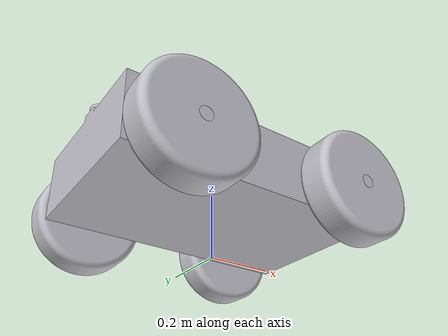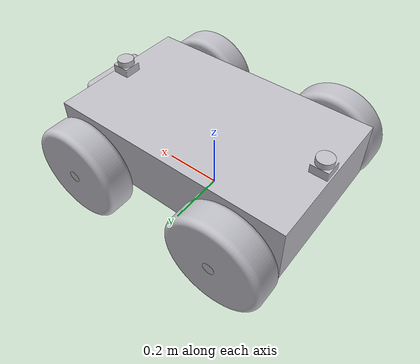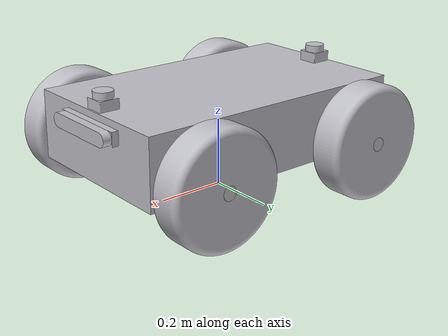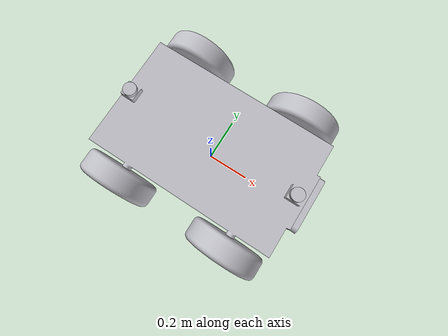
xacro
<?xml version="1.0"?>
<robot xmlns:xacro="http://www.ros.org/wiki/xacro" name="diffdrive_robot">
  <xacro:arg name="prefix" default=""/>
  <xacro:arg name="use_mock_hardware" default="false"/>

  <!-- Include the macro file ONCE -->
  <xacro:include filename="$(find susag_bringup)/urdf/susag_updated_model.xacro"/>
  <!-- Include ros2_control xacro ONCE -->
  <xacro:include filename="$(find susag_bringup)/urdf/susag_diffbot.ros2_control.xacro"/>

  <!-- Instantiate your robot -->
  <xacro:diffbot prefix="$(arg prefix)"/>

  <!-- Attach ros2_control hardware/controller -->
  <xacro:diffbot_ros2_control
    name="DiffBot" prefix="$(arg prefix)" use_mock_hardware="$(arg use_mock_hardware)"/>

</robot>

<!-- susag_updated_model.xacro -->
<robot xmlns:xacro="http://www.ros.org/wiki/xacro">

  <xacro:macro name="diffbot" params="prefix">

    <xacro:include filename="$(find susag_updated_model_description)/urdf/materials.xacro" />
    <xacro:include filename="$(find susag_updated_model_description)/urdf/susag_updated_model.trans" />
    <xacro:include filename="$(find susag_updated_model_description)/urdf/susag_updated_model.gazebo" />
    <link name="base_link">
      <inertial>
        <origin xyz="0.0009712747698901402 0.0 0.21010916566289983" rpy="0 0 0"/>
        <mass value="2.0"/>
        <inertia ixx="16.290402" iyy="40.746842" izz="52.606689" ixy="0.0" iyz="0.0" ixz="-0.038454"/>
      </inertial>
      <visual>
        <origin xyz="0 0 0" rpy="0 0 0"/>
        <geometry>
          <mesh filename="file://$(find susag_updated_model_description)/meshes/base_link.stl" scale="0.001 0.001 0.001"/>
        </geometry>
        <material name="silver"/>
      </visual>
      <collision>
        <origin xyz="0 0 0" rpy="0 0 0"/>
        <geometry>
          <mesh filename="file://$(find susag_updated_model_description)/meshes/base_link.stl" scale="0.001 0.001 0.001"/>
        </geometry>
      </collision>
    </link>

    <link name="rear_right_wheel_1">
      <inertial>
        <origin xyz="-3.1807889655510735e-14 0.04999999999999999 -5.551115123125783e-17" rpy="0 0 0"/>
        <mass value="4.0"/>
        <inertia ixx="0.491633" iyy="0.87867" izz="0.491633" ixy="-0.0" iyz="0.0" ixz="-0.0"/>
      </inertial>
      <visual>
        <origin xyz="0.2665 0.37 -0.165" rpy="0 0 0"/>
        <geometry>
          <mesh filename="file://$(find susag_updated_model_description)/meshes/rear_right_wheel_1.stl" scale="0.001 0.001 0.001"/>
        </geometry>
        <material name="silver"/>
      </visual>
      <collision>
        <origin xyz="0.2665 0.37 -0.165" rpy="0 0 0"/>
        <geometry>
          <mesh filename="file://$(find susag_updated_model_description)/meshes/rear_right_wheel_1.stl" scale="0.001 0.001 0.001"/>
        </geometry>
      </collision>
    </link>

    <link name="front_right_wheel_1">
      <inertial>
        <origin xyz="-3.191891195797325e-14 0.04999999999999999 -5.551115123125783e-17" rpy="0 0 0"/>
        <mass value="4.0"/>
        <inertia ixx="0.491633" iyy="0.87867" izz="0.491633" ixy="0.0" iyz="0.0" ixz="-0.0"/>
      </inertial>
      <visual>
        <origin xyz="-0.2665 0.37 -0.165" rpy="0 0 0"/>
        <geometry>
          <mesh filename="file://$(find susag_updated_model_description)/meshes/front_right_wheel_1.stl" scale="0.001 0.001 0.001"/>
        </geometry>
        <material name="silver"/>
      </visual>
      <collision>
        <origin xyz="-0.2665 0.37 -0.165" rpy="0 0 0"/>
        <geometry>
          <mesh filename="file://$(find susag_updated_model_description)/meshes/front_right_wheel_1.stl" scale="0.001 0.001 0.001"/>
        </geometry>
      </collision>
    </link>

    <link name="front_left_wheel_1">
      <inertial>
        <origin xyz="-3.191891195797325e-14 -0.04999999999999999 -5.551115123125783e-17" rpy="0 0 0"/>
        <mass value="4.0"/>
        <inertia ixx="0.491633" iyy="0.87867" izz="0.491633" ixy="-0.0" iyz="-0.0" ixz="-0.0"/>
      </inertial>
      <visual>
        <origin xyz="-0.2665 -0.37 -0.165" rpy="0 0 0"/>
        <geometry>
          <mesh filename="file://$(find susag_updated_model_description)/meshes/front_left_wheel_1.stl" scale="0.001 0.001 0.001"/>
        </geometry>
        <material name="silver"/>
      </visual>
      <collision>
        <origin xyz="-0.2665 -0.37 -0.165" rpy="0 0 0"/>
        <geometry>
          <mesh filename="file://$(find susag_updated_model_description)/meshes/front_left_wheel_1.stl" scale="0.001 0.001 0.001"/>
        </geometry>
      </collision>
    </link>

    <link name="rear_left_wheel_1">
      <inertial>
        <origin xyz="-3.186340080674199e-14 -0.04999999999999999 -5.551115123125783e-17" rpy="0 0 0"/>
        <mass value="4.0"/>
        <inertia ixx="0.491633" iyy="0.87867" izz="0.491633" ixy="0.0" iyz="-0.0" ixz="-0.0"/>
      </inertial>
      <visual>
        <origin xyz="0.2665 -0.37 -0.165" rpy="0 0 0"/>
        <geometry>
          <mesh filename="file://$(find susag_updated_model_description)/meshes/rear_left_wheel_1.stl" scale="0.001 0.001 0.001"/>
        </geometry>
        <material name="silver"/>
      </visual>
      <collision>
        <origin xyz="0.2665 -0.37 -0.165" rpy="0 0 0"/>
        <geometry>
          <mesh filename="file://$(find susag_updated_model_description)/meshes/rear_left_wheel_1.stl" scale="0.001 0.001 0.001"/>
        </geometry>
      </collision>
    </link>

    <link name="real_sense_1">
      <inertial>
        <origin xyz="0.012500000000000011 0.0 0.0" rpy="0 0 0"/>
        <mass value="0.1"/>
        <inertia ixx="0.008377" iyy="0.000329" izz="0.008237" ixy="0.0" iyz="0.0" ixz="-0.0"/>
      </inertial>
      <visual>
        <origin xyz="-0.436 -0.0 -0.27" rpy="0 0 0"/>
        <geometry>
          <mesh filename="file://$(find susag_updated_model_description)/meshes/real_sense_1.stl" scale="0.001 0.001 0.001"/>
        </geometry>
        <material name="silver"/>
      </visual>
      <collision>
        <origin xyz="-0.436 -0.0 -0.27" rpy="0 0 0"/>
        <geometry>
          <mesh filename="file://$(find susag_updated_model_description)/meshes/real_sense_1.stl" scale="0.001 0.001 0.001"/>
        </geometry>
      </collision>
    </link>

    <link name="rear_lidar_1">
      <inertial>
        <origin xyz="0.0 0.0 0.009999999999999898" rpy="0 0 0"/>
        <mass value="0.1"/>
        <inertia ixx="8.9e-05" iyy="8.9e-05" izz="0.000152" ixy="-0.0" iyz="0.0" ixz="0.0"/>
      </inertial>
      <visual>
        <origin xyz="0.381 -0.0 -0.34" rpy="0 0 0"/>
        <geometry>
          <mesh filename="file://$(find susag_updated_model_description)/meshes/rear_lidar_1.stl" scale="0.001 0.001 0.001"/>
        </geometry>
        <material name="silver"/>
      </visual>
      <collision>
        <origin xyz="0.381 -0.0 -0.34" rpy="0 0 0"/>
        <geometry>
          <mesh filename="file://$(find susag_updated_model_description)/meshes/rear_lidar_1.stl" scale="0.001 0.001 0.001"/>
        </geometry>
      </collision>
    </link>

    <link name="front_lidar_1">
      <inertial>
        <origin xyz="5.6773423184885985e-09 -5.7697137078703364e-18 0.009999999999999953" rpy="0 0 0"/>
        <mass value="0.1"/>
        <inertia ixx="8.9e-05" iyy="8.9e-05" izz="0.000152" ixy="-0.0" iyz="0.0" ixz="-0.0"/>
      </inertial>
      <visual>
        <origin xyz="-0.381 -0.0 -0.34" rpy="0 0 0"/>
        <geometry>
          <mesh filename="file://$(find susag_updated_model_description)/meshes/front_lidar_1.stl" scale="0.001 0.001 0.001"/>
        </geometry>
        <material name="silver"/>
      </visual>
      <collision>
        <origin xyz="-0.381 -0.0 -0.34" rpy="0 0 0"/>
        <geometry>
          <mesh filename="file://$(find susag_updated_model_description)/meshes/front_lidar_1.stl" scale="0.001 0.001 0.001"/>
        </geometry>
      </collision>
    </link>

    <link name="imu_link">
      <inertial>
        <origin xyz="0 0 0" rpy="0 0 0"/>
        <!-- tiny mass/inertia just to be valid -->
        <mass value="0.05"/>
        <inertia ixx="1e-5" iyy="1e-5" izz="1e-5" ixy="0" ixz="0" iyz="0"/>
      </inertial>
      <visual>
        <origin xyz="0 0 0" rpy="0 0 0"/>
        <geometry>
          <!-- small box to visualize; optional -->
          <box size="0.02 0.02 0.01"/>
        </geometry>
        <material name="silver"/>
      </visual>
      <collision>
        <origin xyz="0 0 0" rpy="0 0 0"/>
        <geometry>
          <box size="0.02 0.02 0.01"/>
        </geometry>
      </collision>
    </link>

    <joint name="rear_wheel_right_joint" type="continuous">
      <origin xyz="-0.2665 -0.37 0.165" rpy="0 0 0"/>
      <parent link="base_link"/>
      <child link="rear_right_wheel_1"/>
      <axis xyz="0.0 1.0 0.0"/>
    </joint>

    <joint name="front_wheel_right_joint" type="continuous">
      <origin xyz="0.2665 -0.37 0.165" rpy="0 0 0"/>
      <parent link="base_link"/>
      <child link="front_right_wheel_1"/>
      <axis xyz="0.0 1.0 0.0"/>
    </joint>

    <joint name="front_wheel_left_joint" type="continuous">
      <origin xyz="0.2665 0.37 0.165" rpy="0 0 0"/>
      <parent link="base_link"/>
      <child link="front_left_wheel_1"/>
      <axis xyz="0.0 1.0 0.0"/>
    </joint>

    <joint name="rear_wheel_left_joint" type="continuous">
      <origin xyz="-0.2665 0.37 0.165" rpy="0 0 0"/>
      <parent link="base_link"/>
      <child link="rear_left_wheel_1"/>
      <axis xyz="0.0 1.0 0.0"/>
    </joint>

    <joint name="real_sense_joint" type="fixed">
      <origin xyz="0.436 0.0 0.27" rpy="0 0 0"/>
      <parent link="base_link"/>
      <child link="real_sense_1"/>
    </joint>

    <joint name="lidar_rear_joint" type="fixed">
      <origin xyz="-0.381 0.0 0.34" rpy="0 0 ${pi}"/>
      <parent link="base_link"/>
      <child link="rear_lidar_1"/>
    </joint>

    <joint name="lidar_front_joint" type="fixed">
      <origin xyz="0.381 0.0 0.34" rpy="0 0 0"/>
      <parent link="base_link"/>
      <child link="front_lidar_1"/>
    </joint>

    <joint name="imu_joint" type="fixed">
      <origin xyz="-0.381 0.02 0.24" rpy="${-pi/2} 0 0"/>
      <parent link="base_link"/>
      <child link="imu_link"/>
    </joint>

  </xacro:macro>

</robot>

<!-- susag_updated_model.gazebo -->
<robot name="susag_updated_model" xmlns:xacro="http://www.ros.org/wiki/xacro" >

<xacro:property name="body_color" value="Gazebo/Silver" />
<xacro:property name="wheel_color" value="Gazebo/Black" />
<xacro:property name="lidar_color" value="Gazebo/Yellow" />
<xacro:property name="camera_color" value="Gazebo/Red" />

<gazebo>
  <plugin name="control" filename="libgazebo_ros_control.so"/>
</gazebo>
<gazebo reference="base_link">
  <material>${body_color}</material>
  <mu1>0</mu1>
  <mu2>0</mu2>
  <self_collide>true</self_collide>
  <gravity>true</gravity>
</gazebo>

<gazebo reference="rear_right_wheel_1">
  <material>${wheel_color}</material>
  <mu1>1200</mu1>
  <mu2>1200</mu2>
  <self_collide>true</self_collide>
</gazebo>

<gazebo reference="front_right_wheel_1">
  <material>${wheel_color}</material>
  <mu1>1200</mu1>
  <mu2>1200</mu2>
  <self_collide>true</self_collide>
</gazebo>

<gazebo reference="front_left_wheel_1">
  <material>${wheel_color}</material>
  <mu1>1200</mu1>
  <mu2>1200</mu2>
  <self_collide>true</self_collide>
</gazebo>

<gazebo reference="rear_left_wheel_1">
  <material>${wheel_color}</material>
  <mu1>1200</mu1>
  <mu2>1200</mu2>
  <self_collide>true</self_collide>
</gazebo>

<gazebo reference="real_sense_1">
  <material>${camera_color}</material>
  <mu1>0.2</mu1>
  <mu2>0.2</mu2>
  <self_collide>true</self_collide>
</gazebo>

<gazebo reference="rear_lidar_1">
  <material>${lidar_color}</material>
  <mu1>0.2</mu1>
  <mu2>0.2</mu2>
  <self_collide>true</self_collide>
</gazebo>

<gazebo reference="front_lidar_1">
  <material>${lidar_color}</material>
  <mu1>0.2</mu1>
  <mu2>0.2</mu2>
  <self_collide>true</self_collide>
</gazebo>

<gazebo>
  <plugin name="diff_drive" filename="libgazebo_ros_diff_drive.so">
    <update_rate>500</update_rate>
    <num_wheel_pairs>2</num_wheel_pairs>

    <!-- LEFT side -->
    <left_joint>front_wheel_left_joint</left_joint>
    <left_joint>rear_wheel_left_joint</left_joint>

    <!-- RIGHT side -->
    <right_joint>front_wheel_right_joint</right_joint>
    <right_joint>rear_wheel_right_joint</right_joint>

    <wheel_separation>0.5</wheel_separation>
    <wheel_diameter>0.33</wheel_diameter>

    <wheel_separation>0.5</wheel_separation>
    <wheel_diameter>0.33</wheel_diameter>

    <!-- Limits-->
    <max_wheel_torque>20</max_wheel_torque>
    <max_wheel_acceleration>1.0</max_wheel_acceleration>

    <!-- Outputs -->
    <publish_odom>true</publish_odom>
    <publish_odom_tf>true</publish_odom_tf>
    <publish_wheel_tf>false</publish_wheel_tf>

    <odometry_frame>odom</odometry_frame>
    <robot_base_frame>base_link</robot_base_frame>
  </plugin>
</gazebo>

<!-- front lidar -->
<gazebo reference="front_lidar_1">
  <sensor type="ray" name="front_lidar_sensor">
    <pose>0 0 0 0 0 0</pose>
    <update_rate>30</update_rate>
    <visualize>true</visualize>

    <ray>
      <scan>
        <horizontal>
          <samples>720</samples>
          <resolution>1</resolution>
          <min_angle>-1.57079632679</min_angle>
          <max_angle>1.57079632679</max_angle>
        </horizontal>
      </scan>

      <range>
        <min>0.1</min>
        <max>12.0.0</max>
        <resolution>0.01</resolution>
      </range>
      <noise>
        <type>gaussian</type>
        <mean>0.0</mean>
        <stddev>0.02</stddev>
      </noise>
    </ray>

    <plugin name="gazebo_ros_lidar_front" filename="libgazebo_ros_ray_sensor.so">
      <ros>
        <remapping>~/out:=front_scan</remapping>
      </ros>
      <output_type>sensor_msgs/LaserScan</output_type>
      <frame_name>front_lidar_1</frame_name>
    </plugin>
  </sensor>
</gazebo>

<!-- rear lidar -->
<gazebo reference="rear_lidar_1">
  <sensor type="ray" name="rear_lidar_sensor">
    <pose>0 0 0 0 0 3.14159265359</pose>
    <update_rate>30</update_rate>
    <visualize>true</visualize>

    <ray>
      <scan>
        <horizontal>
          <samples>720</samples>
          <resolution>1</resolution>
          <min_angle>-1.57079632679</min_angle>
          <max_angle>1.57079632679</max_angle>
        </horizontal>
      </scan>

      <range>
        <min>0.1</min>
        <max>12.0.0</max>
        <resolution>0.01</resolution>
      </range>
      <noise>
        <type>gaussian</type>
        <mean>0.0</mean>
        <stddev>0.02</stddev>
      </noise>
    </ray>

    <plugin name="gazebo_ros_lidar_rear" filename="libgazebo_ros_ray_sensor.so">
      <ros>
        <remapping>~/out:=rear_scan</remapping>
      </ros>
      <output_type>sensor_msgs/LaserScan</output_type>
      <frame_name>rear_lidar_1</frame_name>
    </plugin>
  </sensor>
</gazebo>

<!-- D435-like depth camera -->
<gazebo reference="real_sense_1">
  <sensor type="depth" name="depth_camera_sensor">
    <update_rate>30</update_rate>            <!-- 30 Hz typical -->
    <always_on>1</always_on>
    <pose>0 0 0 0 0 0</pose>

    <camera name="depth_camera">
      <!-- 86–87° H-FOV ≈ 1.50 rad (your 60° = 1.047 was too narrow) -->
      <horizontal_fov>1.50</horizontal_fov>

      <!-- Use a 16:9 depth mode like the real camera -->
      <image>
        <width>1280</width>                  <!-- or 848 for lighter sim -->
        <height>720</height>                 <!-- 1280x720 matches spec -->
        <format>R8G8B8</format>              <!-- color buffer format (ok) -->
      </image>

      <!-- Clip to realistic working range -->
      <clip>
        <!-- D435 Min-Z ~0.28 m @ max res; use 0.1–0.28 if you need closer -->
        <near>0.28</near>
        <far>10.0</far>                      <!-- workable long range -->
      </clip>

      <!-- Keep depth imager distortion off; Gazebo pinhole model -->
      <distortion>
        <k1>0.0</k1><k2>0.0</k2><k3>0.0</k3>
        <p1>0.0</p1><p2>0.0</p2>
        <center>0.5 0.5</center>
      </distortion>
    </camera>

    <plugin name="depth_camera_plugin" filename="libgazebo_ros_camera.so">
      <ros>
        <namespace>susag</namespace>
        <remapping>~/image:=/image_raw</remapping>
        <remapping>~/camera_info:=/camera_info</remapping>
        <remapping>~/depth_image:=/depth/image_raw</remapping>
        <remapping>~/points:=depth_camera/points</remapping>
      </ros>

      <camera_name>depth_camera</camera_name>
      <frame_name>real_sense_1</frame_name>

      <!-- Set the real stereo baseline (was 0.07 m) -->
      <hack_baseline>0.05</hack_baseline>

      <min_depth>0.28</min_depth>
    </plugin>

    <!-- Optional noise to mimic <~2% error @ 2 m -->
    <noise>
      <type>gaussian</type>
      <mean>0.0</mean>
      <!-- 2% of 2 m ≈ 4 cm; scale down for sim stability -->
      <stddev>0.02</stddev>   <!-- meters of depth noise; tune 0.005–0.02 -->
    </noise>
  </sensor>
</gazebo>

</robot>
